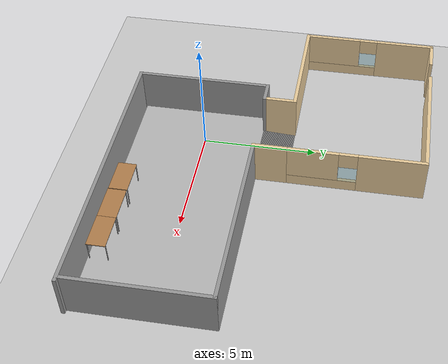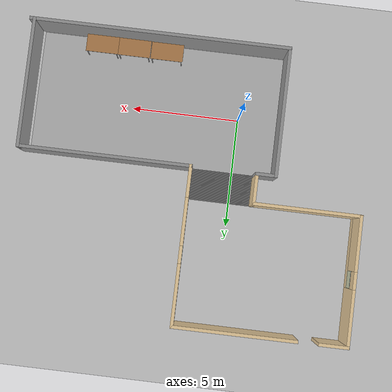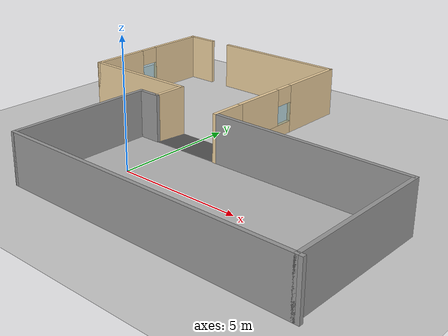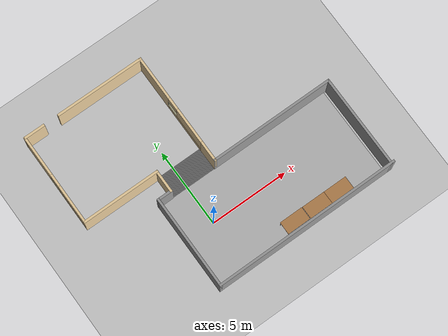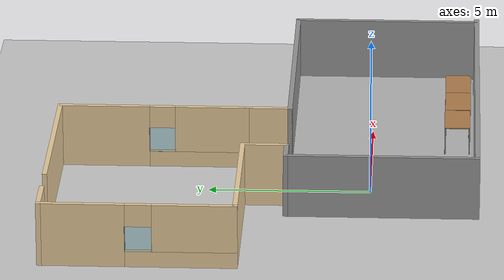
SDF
<sdf version="1.7">
 <world name="default">
  <plugin name="xbot2_clock" filename="libxbot2_gz_clock.so"/>
  <gravity>0 0 -9.81</gravity>
  <model name="ground_plane">
   <static>1</static>
   <link name="link">
    <collision name="collision">
     <geometry><plane><normal>0 0 1</normal><size>100 100</size></plane></geometry>
     <surface><friction><ode><mu>1</mu><mu2>1</mu2></ode></friction></surface>
    </collision>
    <visual name="visual">
     <cast_shadows>0</cast_shadows>
     <geometry><plane><normal>0 0 1</normal><size>100 100</size></plane></geometry>
     <material>
      <script><uri>file://media/materials/scripts/gazebo.material</uri><name>Gazebo/Grey</name></script>
     </material>
    </visual>
   </link>
  </model>
  <light name="sun" type="directional">
   <pose>0 0 10 0 -0 0</pose>
   <diffuse>0.8 0.8 0.8 1</diffuse>
   <specular>0.2 0.2 0.2 1</specular>
   <attenuation>
    <range>1000</range>
    <constant>0.9</constant>
    <linear>0.01</linear>
    <quadratic>0.001</quadratic>
   </attenuation>
   <direction>-0.5 0.1 -0.9</direction>
   <spot><inner_angle>0</inner_angle><outer_angle>0</outer_angle><falloff>0</falloff></spot>
  </light>
  <physics name="update_rate" type="ode">
   <real_time_update_rate>4000</real_time_update_rate>
   <max_step_size>0.00025</max_step_size>
   <max_contacts>5</max_contacts>
   <bullet>
    <solver><iters>100</iters><sor>1.55</sor><type>sequential_impulse</type></solver>
    <constraints>
     <contact_surface_layer>0.2</contact_surface_layer>
     <cfm>0.005</cfm>
     <erp>0.2</erp>
     <split_impulse>1</split_impulse>
     <split_impulse_penetration_threshold>-0.01</split_impulse_penetration_threshold>
    </constraints>
   </bullet>
   <ode>
    <solver>
     <iters>50</iters>
     <sor>1.2</sor>
     <type>quick</type>
     <use_dynamic_moi_rescaling>0</use_dynamic_moi_rescaling>
    </solver>
    <constraints>
     <contact_surface_layer>0.0002</contact_surface_layer>
     <contact_max_correcting_vel>500</contact_max_correcting_vel>
     <cfm>1e-06</cfm>
     <erp>0.3</erp>
    </constraints>
   </ode>
   <real_time_factor>1</real_time_factor>
  </physics>
  <magnetic_field>6e-06 2.3e-05 -4.2e-05</magnetic_field>
  <atmosphere type="adiabatic"/>
  <scene><ambient>0.4 0.4 0.4 1</ambient><background>0.7 0.7 0.7 1</background><shadows>1</shadows></scene>
  <spherical_coordinates>
   <surface_model>EARTH_WGS84</surface_model>
   <latitude_deg>0</latitude_deg>
   <longitude_deg>0</longitude_deg>
   <elevation>0</elevation>
   <heading_deg>0</heading_deg>
  </spherical_coordinates>
  <model name="room3人">
   <pose>3.5576 3.23391 0 0 -0 0</pose>
   <link name="Stairs_2">
    <visual name="Stairs_2_Visual_0">
     <pose>-3.08906 0.718158 0.001 0 -0 0</pose>
     <geometry><box><size>2.88 0.029 0.002</size></box></geometry>
     <material>
      <script><uri>file://media/materials/scripts/gazebo.material</uri><name>Gazebo/Grey</name></script>
      <ambient>1 1 1 1</ambient>
     </material>
     <meta><layer>0</layer></meta>
    </visual>
    <collision name="Stairs_2_Collision_0">
     <geometry><box><size>2.88 0.029 0.002</size></box></geometry>
     <pose>-3.08906 0.718158 0.001 0 -0 0</pose>
    </collision>
    <visual name="Stairs_2_Visual_1">
     <pose>-3.08906 0.689157 0.003 0 -0 0</pose>
     <geometry><box><size>2.88 0.029 0.002</size></box></geometry>
     <material>
      <script><uri>file://media/materials/scripts/gazebo.material</uri><name>Gazebo/Grey</name></script>
      <ambient>1 1 1 1</ambient>
     </material>
     <meta><layer>0</layer></meta>
    </visual>
    <collision name="Stairs_2_Collision_1">
     <geometry><box><size>2.88 0.029 0.002</size></box></geometry>
     <pose>-3.08906 0.689157 0.003 0 -0 0</pose>
    </collision>
    <visual name="Stairs_2_Visual_2">
     <pose>-3.08906 0.660158 0.005 0 -0 0</pose>
     <geometry><box><size>2.88 0.029 0.002</size></box></geometry>
     <material>
      <script><uri>file://media/materials/scripts/gazebo.material</uri><name>Gazebo/Grey</name></script>
      <ambient>1 1 1 1</ambient>
     </material>
     <meta><layer>0</layer></meta>
    </visual>
    <collision name="Stairs_2_Collision_2">
     <geometry><box><size>2.88 0.029 0.002</size></box></geometry>
     <pose>-3.08906 0.660158 0.005 0 -0 0</pose>
    </collision>
    <visual name="Stairs_2_Visual_3">
     <pose>-3.08906 0.631158 0.007 0 -0 0</pose>
     <geometry><box><size>2.88 0.029 0.002</size></box></geometry>
     <material>
      <script><uri>file://media/materials/scripts/gazebo.material</uri><name>Gazebo/Grey</name></script>
      <ambient>1 1 1 1</ambient>
     </material>
     <meta><layer>0</layer></meta>
    </visual>
    <collision name="Stairs_2_Collision_3">
     <geometry><box><size>2.88 0.029 0.002</size></box></geometry>
     <pose>-3.08906 0.631158 0.007 0 -0 0</pose>
    </collision>
    <visual name="Stairs_2_Visual_4">
     <pose>-3.08906 0.602157 0.009 0 -0 0</pose>
     <geometry><box><size>2.88 0.029 0.002</size></box></geometry>
     <material>
      <script><uri>file://media/materials/scripts/gazebo.material</uri><name>Gazebo/Grey</name></script>
      <ambient>1 1 1 1</ambient>
     </material>
     <meta><layer>0</layer></meta>
    </visual>
    <collision name="Stairs_2_Collision_4">
     <geometry><box><size>2.88 0.029 0.002</size></box></geometry>
     <pose>-3.08906 0.602157 0.009 0 -0 0</pose>
    </collision>
    <visual name="Stairs_2_Visual_5">
     <pose>-3.08906 0.573158 0.011 0 -0 0</pose>
     <geometry><box><size>2.88 0.029 0.002</size></box></geometry>
     <material>
      <script><uri>file://media/materials/scripts/gazebo.material</uri><name>Gazebo/Grey</name></script>
      <ambient>1 1 1 1</ambient>
     </material>
     <meta><layer>0</layer></meta>
    </visual>
    <collision name="Stairs_2_Collision_5">
     <geometry><box><size>2.88 0.029 0.002</size></box></geometry>
     <pose>-3.08906 0.573158 0.011 0 -0 0</pose>
    </collision>
    <visual name="Stairs_2_Visual_6">
     <pose>-3.08906 0.544158 0.013 0 -0 0</pose>
     <geometry><box><size>2.88 0.029 0.002</size></box></geometry>
     <material>
      <script><uri>file://media/materials/scripts/gazebo.material</uri><name>Gazebo/Grey</name></script>
      <ambient>1 1 1 1</ambient>
     </material>
     <meta><layer>0</layer></meta>
    </visual>
    <collision name="Stairs_2_Collision_6">
     <geometry><box><size>2.88 0.029 0.002</size></box></geometry>
     <pose>-3.08906 0.544158 0.013 0 -0 0</pose>
    </collision>
    <visual name="Stairs_2_Visual_7">
     <pose>-3.08906 0.515157 0.015 0 -0 0</pose>
     <geometry><box><size>2.88 0.029 0.002</size></box></geometry>
     <material>
      <script><uri>file://media/materials/scripts/gazebo.material</uri><name>Gazebo/Grey</name></script>
      <ambient>1 1 1 1</ambient>
     </material>
     <meta><layer>0</layer></meta>
    </visual>
    <collision name="Stairs_2_Collision_7">
     <geometry><box><size>2.88 0.029 0.002</size></box></geometry>
     <pose>-3.08906 0.515157 0.015 0 -0 0</pose>
    </collision>
    <visual name="Stairs_2_Visual_8">
     <pose>-3.08906 0.486158 0.017 0 -0 0</pose>
     <geometry><box><size>2.88 0.029 0.002</size></box></geometry>
     <material>
      <script><uri>file://media/materials/scripts/gazebo.material</uri><name>Gazebo/Grey</name></script>
      <ambient>1 1 1 1</ambient>
     </material>
     <meta><layer>0</layer></meta>
    </visual>
    <collision name="Stairs_2_Collision_8">
     <geometry><box><size>2.88 0.029 0.002</size></box></geometry>
     <pose>-3.08906 0.486158 0.017 0 -0 0</pose>
    </collision>
    <visual name="Stairs_2_Visual_9">
     <pose>-3.08906 0.457157 0.019 0 -0 0</pose>
     <geometry><box><size>2.88 0.029 0.002</size></box></geometry>
     <material>
      <script><uri>file://media/materials/scripts/gazebo.material</uri><name>Gazebo/Grey</name></script>
      <ambient>1 1 1 1</ambient>
     </material>
     <meta><layer>0</layer></meta>
    </visual>
    <collision name="Stairs_2_Collision_9">
     <geometry><box><size>2.88 0.029 0.002</size></box></geometry>
     <pose>-3.08906 0.457157 0.019 0 -0 0</pose>
    </collision>
    <visual name="Stairs_2_Visual_10">
     <pose>-3.08906 0.428158 0.021 0 -0 0</pose>
     <geometry><box><size>2.88 0.029 0.002</size></box></geometry>
     <material>
      <script><uri>file://media/materials/scripts/gazebo.material</uri><name>Gazebo/Grey</name></script>
      <ambient>1 1 1 1</ambient>
     </material>
     <meta><layer>0</layer></meta>
    </visual>
    <collision name="Stairs_2_Collision_10">
     <geometry><box><size>2.88 0.029 0.002</size></box></geometry>
     <pose>-3.08906 0.428158 0.021 0 -0 0</pose>
    </collision>
    <visual name="Stairs_2_Visual_11">
     <pose>-3.08906 0.399158 0.023 0 -0 0</pose>
     <geometry><box><size>2.88 0.029 0.002</size></box></geometry>
     <material>
      <script><uri>file://media/materials/scripts/gazebo.material</uri><name>Gazebo/Grey</name></script>
      <ambient>1 1 1 1</ambient>
     </material>
     <meta><layer>0</layer></meta>
    </visual>
    <collision name="Stairs_2_Collision_11">
     <geometry><box><size>2.88 0.029 0.002</size></box></geometry>
     <pose>-3.08906 0.399158 0.023 0 -0 0</pose>
    </collision>
    <visual name="Stairs_2_Visual_12">
     <pose>-3.08906 0.370157 0.025 0 -0 0</pose>
     <geometry><box><size>2.88 0.029 0.002</size></box></geometry>
     <material>
      <script><uri>file://media/materials/scripts/gazebo.material</uri><name>Gazebo/Grey</name></script>
      <ambient>1 1 1 1</ambient>
     </material>
     <meta><layer>0</layer></meta>
    </visual>
    <collision name="Stairs_2_Collision_12">
     <geometry><box><size>2.88 0.029 0.002</size></box></geometry>
     <pose>-3.08906 0.370157 0.025 0 -0 0</pose>
    </collision>
    <visual name="Stairs_2_Visual_13">
     <pose>-3.08906 0.341158 0.027 0 -0 0</pose>
     <geometry><box><size>2.88 0.029 0.002</size></box></geometry>
     <material>
      <script><uri>file://media/materials/scripts/gazebo.material</uri><name>Gazebo/Grey</name></script>
      <ambient>1 1 1 1</ambient>
     </material>
     <meta><layer>0</layer></meta>
    </visual>
    <collision name="Stairs_2_Collision_13">
     <geometry><box><size>2.88 0.029 0.002</size></box></geometry>
     <pose>-3.08906 0.341158 0.027 0 -0 0</pose>
    </collision>
    <visual name="Stairs_2_Visual_14">
     <pose>-3.08906 0.312158 0.029 0 -0 0</pose>
     <geometry><box><size>2.88 0.029 0.002</size></box></geometry>
     <material>
      <script><uri>file://media/materials/scripts/gazebo.material</uri><name>Gazebo/Grey</name></script>
      <ambient>1 1 1 1</ambient>
     </material>
     <meta><layer>0</layer></meta>
    </visual>
    <collision name="Stairs_2_Collision_14">
     <geometry><box><size>2.88 0.029 0.002</size></box></geometry>
     <pose>-3.08906 0.312158 0.029 0 -0 0</pose>
    </collision>
    <visual name="Stairs_2_Visual_15">
     <pose>-3.08906 0.283157 0.031 0 -0 0</pose>
     <geometry><box><size>2.88 0.029 0.002</size></box></geometry>
     <material>
      <script><uri>file://media/materials/scripts/gazebo.material</uri><name>Gazebo/Grey</name></script>
      <ambient>1 1 1 1</ambient>
     </material>
     <meta><layer>0</layer></meta>
    </visual>
    <collision name="Stairs_2_Collision_15">
     <geometry><box><size>2.88 0.029 0.002</size></box></geometry>
     <pose>-3.08906 0.283157 0.031 0 -0 0</pose>
    </collision>
    <visual name="Stairs_2_Visual_16">
     <pose>-3.08906 0.254158 0.033 0 -0 0</pose>
     <geometry><box><size>2.88 0.029 0.002</size></box></geometry>
     <material>
      <script><uri>file://media/materials/scripts/gazebo.material</uri><name>Gazebo/Grey</name></script>
      <ambient>1 1 1 1</ambient>
     </material>
     <meta><layer>0</layer></meta>
    </visual>
    <collision name="Stairs_2_Collision_16">
     <geometry><box><size>2.88 0.029 0.002</size></box></geometry>
     <pose>-3.08906 0.254158 0.033 0 -0 0</pose>
    </collision>
    <visual name="Stairs_2_Visual_17">
     <pose>-3.08906 0.225157 0.035 0 -0 0</pose>
     <geometry><box><size>2.88 0.029 0.002</size></box></geometry>
     <material>
      <script><uri>file://media/materials/scripts/gazebo.material</uri><name>Gazebo/Grey</name></script>
      <ambient>1 1 1 1</ambient>
     </material>
     <meta><layer>0</layer></meta>
    </visual>
    <collision name="Stairs_2_Collision_17">
     <geometry><box><size>2.88 0.029 0.002</size></box></geometry>
     <pose>-3.08906 0.225157 0.035 0 -0 0</pose>
    </collision>
    <visual name="Stairs_2_Visual_18">
     <pose>-3.08906 0.196158 0.037 0 -0 0</pose>
     <geometry><box><size>2.88 0.029 0.002</size></box></geometry>
     <material>
      <script><uri>file://media/materials/scripts/gazebo.material</uri><name>Gazebo/Grey</name></script>
      <ambient>1 1 1 1</ambient>
     </material>
     <meta><layer>0</layer></meta>
    </visual>
    <collision name="Stairs_2_Collision_18">
     <geometry><box><size>2.88 0.029 0.002</size></box></geometry>
     <pose>-3.08906 0.196158 0.037 0 -0 0</pose>
    </collision>
    <visual name="Stairs_2_Visual_19">
     <pose>-3.08906 0.167158 0.039 0 -0 0</pose>
     <geometry><box><size>2.88 0.029 0.002</size></box></geometry>
     <material>
      <script><uri>file://media/materials/scripts/gazebo.material</uri><name>Gazebo/Grey</name></script>
      <ambient>1 1 1 1</ambient>
     </material>
     <meta><layer>0</layer></meta>
    </visual>
    <collision name="Stairs_2_Collision_19">
     <geometry><box><size>2.88 0.029 0.002</size></box></geometry>
     <pose>-3.08906 0.167158 0.039 0 -0 0</pose>
    </collision>
    <visual name="Stairs_2_Visual_20">
     <pose>-3.08906 0.138157 0.041 0 -0 0</pose>
     <geometry><box><size>2.88 0.029 0.002</size></box></geometry>
     <material>
      <script><uri>file://media/materials/scripts/gazebo.material</uri><name>Gazebo/Grey</name></script>
      <ambient>1 1 1 1</ambient>
     </material>
     <meta><layer>0</layer></meta>
    </visual>
    <collision name="Stairs_2_Collision_20">
     <geometry><box><size>2.88 0.029 0.002</size></box></geometry>
     <pose>-3.08906 0.138157 0.041 0 -0 0</pose>
    </collision>
    <visual name="Stairs_2_Visual_21">
     <pose>-3.08906 0.109158 0.043 0 -0 0</pose>
     <geometry><box><size>2.88 0.029 0.002</size></box></geometry>
     <material>
      <script><uri>file://media/materials/scripts/gazebo.material</uri><name>Gazebo/Grey</name></script>
      <ambient>1 1 1 1</ambient>
     </material>
     <meta><layer>0</layer></meta>
    </visual>
    <collision name="Stairs_2_Collision_21">
     <geometry><box><size>2.88 0.029 0.002</size></box></geometry>
     <pose>-3.08906 0.109158 0.043 0 -0 0</pose>
    </collision>
    <visual name="Stairs_2_Visual_22">
     <pose>-3.08906 0.080158 0.045 0 -0 0</pose>
     <geometry><box><size>2.88 0.029 0.002</size></box></geometry>
     <material>
      <script><uri>file://media/materials/scripts/gazebo.material</uri><name>Gazebo/Grey</name></script>
      <ambient>1 1 1 1</ambient>
     </material>
     <meta><layer>0</layer></meta>
    </visual>
    <collision name="Stairs_2_Collision_22">
     <geometry><box><size>2.88 0.029 0.002</size></box></geometry>
     <pose>-3.08906 0.080158 0.045 0 -0 0</pose>
    </collision>
    <visual name="Stairs_2_Visual_23">
     <pose>-3.08906 0.051158 0.047 0 -0 0</pose>
     <geometry><box><size>2.88 0.029 0.002</size></box></geometry>
     <material>
      <script><uri>file://media/materials/scripts/gazebo.material</uri><name>Gazebo/Grey</name></script>
      <ambient>1 1 1 1</ambient>
     </material>
     <meta><layer>0</layer></meta>
    </visual>
    <collision name="Stairs_2_Collision_23">
     <geometry><box><size>2.88 0.029 0.002</size></box></geometry>
     <pose>-3.08906 0.051158 0.047 0 -0 0</pose>
    </collision>
    <visual name="Stairs_2_Visual_24">
     <pose>-3.08906 0.022157 0.049 0 -0 0</pose>
     <geometry><box><size>2.88 0.029 0.002</size></box></geometry>
     <material>
      <script><uri>file://media/materials/scripts/gazebo.material</uri><name>Gazebo/Grey</name></script>
      <ambient>1 1 1 1</ambient>
     </material>
     <meta><layer>0</layer></meta>
    </visual>
    <collision name="Stairs_2_Collision_24">
     <geometry><box><size>2.88 0.029 0.002</size></box></geometry>
     <pose>-3.08906 0.022157 0.049 0 -0 0</pose>
    </collision>
    <visual name="Stairs_2_Visual_25">
     <pose>-3.08906 -0.006842 0.051 0 -0 0</pose>
     <geometry><box><size>2.88 0.029 0.002</size></box></geometry>
     <material>
      <script><uri>file://media/materials/scripts/gazebo.material</uri><name>Gazebo/Grey</name></script>
      <ambient>1 1 1 1</ambient>
     </material>
     <meta><layer>0</layer></meta>
    </visual>
    <collision name="Stairs_2_Collision_25">
     <geometry><box><size>2.88 0.029 0.002</size></box></geometry>
     <pose>-3.08906 -0.006842 0.051 0 -0 0</pose>
    </collision>
    <visual name="Stairs_2_Visual_26">
     <pose>-3.08906 -0.035843 0.053 0 -0 0</pose>
     <geometry><box><size>2.88 0.029 0.002</size></box></geometry>
     <material>
      <script><uri>file://media/materials/scripts/gazebo.material</uri><name>Gazebo/Grey</name></script>
      <ambient>1 1 1 1</ambient>
     </material>
     <meta><layer>0</layer></meta>
    </visual>
    <collision name="Stairs_2_Collision_26">
     <geometry><box><size>2.88 0.029 0.002</size></box></geometry>
     <pose>-3.08906 -0.035843 0.053 0 -0 0</pose>
    </collision>
    <visual name="Stairs_2_Visual_27">
     <pose>-3.08906 -0.064843 0.055 0 -0 0</pose>
     <geometry><box><size>2.88 0.029 0.002</size></box></geometry>
     <material>
      <script><uri>file://media/materials/scripts/gazebo.material</uri><name>Gazebo/Grey</name></script>
      <ambient>1 1 1 1</ambient>
     </material>
     <meta><layer>0</layer></meta>
    </visual>
    <collision name="Stairs_2_Collision_27">
     <geometry><box><size>2.88 0.029 0.002</size></box></geometry>
     <pose>-3.08906 -0.064843 0.055 0 -0 0</pose>
    </collision>
    <visual name="Stairs_2_Visual_28">
     <pose>-3.08906 -0.093843 0.057 0 -0 0</pose>
     <geometry><box><size>2.88 0.029 0.002</size></box></geometry>
     <material>
      <script><uri>file://media/materials/scripts/gazebo.material</uri><name>Gazebo/Grey</name></script>
      <ambient>1 1 1 1</ambient>
     </material>
     <meta><layer>0</layer></meta>
    </visual>
    <collision name="Stairs_2_Collision_28">
     <geometry><box><size>2.88 0.029 0.002</size></box></geometry>
     <pose>-3.08906 -0.093843 0.057 0 -0 0</pose>
    </collision>
    <visual name="Stairs_2_Visual_29">
     <pose>-3.08906 -0.122843 0.059 0 -0 0</pose>
     <geometry><box><size>2.88 0.029 0.002</size></box></geometry>
     <material>
      <script><uri>file://media/materials/scripts/gazebo.material</uri><name>Gazebo/Grey</name></script>
      <ambient>1 1 1 1</ambient>
     </material>
     <meta><layer>0</layer></meta>
    </visual>
    <collision name="Stairs_2_Collision_29">
     <geometry><box><size>2.88 0.029 0.002</size></box></geometry>
     <pose>-3.08906 -0.122843 0.059 0 -0 0</pose>
    </collision>
    <visual name="Stairs_2_Visual_30">
     <pose>-3.08906 -0.151843 0.061 0 -0 0</pose>
     <geometry><box><size>2.88 0.029 0.002</size></box></geometry>
     <material>
      <script><uri>file://media/materials/scripts/gazebo.material</uri><name>Gazebo/Grey</name></script>
      <ambient>1 1 1 1</ambient>
     </material>
     <meta><layer>0</layer></meta>
    </visual>
    <collision name="Stairs_2_Collision_30">
     <geometry><box><size>2.88 0.029 0.002</size></box></geometry>
     <pose>-3.08906 -0.151843 0.061 0 -0 0</pose>
    </collision>
    <visual name="Stairs_2_Visual_31">
     <pose>-3.08906 -0.180843 0.063 0 -0 0</pose>
     <geometry><box><size>2.88 0.029 0.002</size></box></geometry>
     <material>
      <script><uri>file://media/materials/scripts/gazebo.material</uri><name>Gazebo/Grey</name></script>
      <ambient>1 1 1 1</ambient>
     </material>
     <meta><layer>0</layer></meta>
    </visual>
    <collision name="Stairs_2_Collision_31">
     <geometry><box><size>2.88 0.029 0.002</size></box></geometry>
     <pose>-3.08906 -0.180843 0.063 0 -0 0</pose>
    </collision>
    <visual name="Stairs_2_Visual_32">
     <pose>-3.08906 -0.209843 0.065 0 -0 0</pose>
     <geometry><box><size>2.88 0.029 0.002</size></box></geometry>
     <material>
      <script><uri>file://media/materials/scripts/gazebo.material</uri><name>Gazebo/Grey</name></script>
      <ambient>1 1 1 1</ambient>
     </material>
     <meta><layer>0</layer></meta>
    </visual>
    <collision name="Stairs_2_Collision_32">
     <geometry><box><size>2.88 0.029 0.002</size></box></geometry>
     <pose>-3.08906 -0.209843 0.065 0 -0 0</pose>
    </collision>
    <visual name="Stairs_2_Visual_33">
     <pose>-3.08906 -0.238843 0.067 0 -0 0</pose>
     <geometry><box><size>2.88 0.029 0.002</size></box></geometry>
     <material>
      <script><uri>file://media/materials/scripts/gazebo.material</uri><name>Gazebo/Grey</name></script>
      <ambient>1 1 1 1</ambient>
     </material>
     <meta><layer>0</layer></meta>
    </visual>
    <collision name="Stairs_2_Collision_33">
     <geometry><box><size>2.88 0.029 0.002</size></box></geometry>
     <pose>-3.08906 -0.238843 0.067 0 -0 0</pose>
    </collision>
    <visual name="Stairs_2_Visual_34">
     <pose>-3.08906 -0.267843 0.069 0 -0 0</pose>
     <geometry><box><size>2.88 0.029 0.002</size></box></geometry>
     <material>
      <script><uri>file://media/materials/scripts/gazebo.material</uri><name>Gazebo/Grey</name></script>
      <ambient>1 1 1 1</ambient>
     </material>
     <meta><layer>0</layer></meta>
    </visual>
    <collision name="Stairs_2_Collision_34">
     <geometry><box><size>2.88 0.029 0.002</size></box></geometry>
     <pose>-3.08906 -0.267843 0.069 0 -0 0</pose>
    </collision>
    <visual name="Stairs_2_Visual_35">
     <pose>-3.08906 -0.296843 0.071 0 -0 0</pose>
     <geometry><box><size>2.88 0.029 0.002</size></box></geometry>
     <material>
      <script><uri>file://media/materials/scripts/gazebo.material</uri><name>Gazebo/Grey</name></script>
      <ambient>1 1 1 1</ambient>
     </material>
     <meta><layer>0</layer></meta>
    </visual>
    <collision name="Stairs_2_Collision_35">
     <geometry><box><size>2.88 0.029 0.002</size></box></geometry>
     <pose>-3.08906 -0.296843 0.071 0 -0 0</pose>
    </collision>
    <visual name="Stairs_2_Visual_36">
     <pose>-3.08906 -0.325843 0.073 0 -0 0</pose>
     <geometry><box><size>2.88 0.029 0.002</size></box></geometry>
     <material>
      <script><uri>file://media/materials/scripts/gazebo.material</uri><name>Gazebo/Grey</name></script>
      <ambient>1 1 1 1</ambient>
     </material>
     <meta><layer>0</layer></meta>
    </visual>
    <collision name="Stairs_2_Collision_36">
     <geometry><box><size>2.88 0.029 0.002</size></box></geometry>
     <pose>-3.08906 -0.325843 0.073 0 -0 0</pose>
    </collision>
    <visual name="Stairs_2_Visual_37">
     <pose>-3.08906 -0.354843 0.075 0 -0 0</pose>
     <geometry><box><size>2.88 0.029 0.002</size></box></geometry>
     <material>
      <script><uri>file://media/materials/scripts/gazebo.material</uri><name>Gazebo/Grey</name></script>
      <ambient>1 1 1 1</ambient>
     </material>
     <meta><layer>0</layer></meta>
    </visual>
    <collision name="Stairs_2_Collision_37">
     <geometry><box><size>2.88 0.029 0.002</size></box></geometry>
     <pose>-3.08906 -0.354843 0.075 0 -0 0</pose>
    </collision>
    <visual name="Stairs_2_Visual_38">
     <pose>-3.08906 -0.383843 0.077 0 -0 0</pose>
     <geometry><box><size>2.88 0.029 0.002</size></box></geometry>
     <material>
      <script><uri>file://media/materials/scripts/gazebo.material</uri><name>Gazebo/Grey</name></script>
      <ambient>1 1 1 1</ambient>
     </material>
     <meta><layer>0</layer></meta>
    </visual>
    <collision name="Stairs_2_Collision_38">
     <geometry><box><size>2.88 0.029 0.002</size></box></geometry>
     <pose>-3.08906 -0.383843 0.077 0 -0 0</pose>
    </collision>
    <visual name="Stairs_2_Visual_39">
     <pose>-3.08906 -0.412843 0.079 0 -0 0</pose>
     <geometry><box><size>2.88 0.029 0.002</size></box></geometry>
     <material>
      <script><uri>file://media/materials/scripts/gazebo.material</uri><name>Gazebo/Grey</name></script>
      <ambient>1 1 1 1</ambient>
     </material>
     <meta><layer>0</layer></meta>
    </visual>
    <collision name="Stairs_2_Collision_39">
     <geometry><box><size>2.88 0.029 0.002</size></box></geometry>
     <pose>-3.08906 -0.412843 0.079 0 -0 0</pose>
    </collision>
    <visual name="Stairs_2_Visual_40">
     <pose>-3.08906 -0.441843 0.081 0 -0 0</pose>
     <geometry><box><size>2.88 0.029 0.002</size></box></geometry>
     <material>
      <script><uri>file://media/materials/scripts/gazebo.material</uri><name>Gazebo/Grey</name></script>
      <ambient>1 1 1 1</ambient>
     </material>
     <meta><layer>0</layer></meta>
    </visual>
    <collision name="Stairs_2_Collision_40">
     <geometry><box><size>2.88 0.029 0.002</size></box></geometry>
     <pose>-3.08906 -0.441843 0.081 0 -0 0</pose>
    </collision>
    <visual name="Stairs_2_Visual_41">
     <pose>-3.08906 -0.470843 0.083 0 -0 0</pose>
     <geometry><box><size>2.88 0.029 0.002</size></box></geometry>
     <material>
      <script><uri>file://media/materials/scripts/gazebo.material</uri><name>Gazebo/Grey</name></script>
      <ambient>1 1 1 1</ambient>
     </material>
     <meta><layer>0</layer></meta>
    </visual>
    <collision name="Stairs_2_Collision_41">
     <geometry><box><size>2.88 0.029 0.002</size></box></geometry>
     <pose>-3.08906 -0.470843 0.083 0 -0 0</pose>
    </collision>
    <visual name="Stairs_2_Visual_42">
     <pose>-3.08906 -0.499842 0.085 0 -0 0</pose>
     <geometry><box><size>2.88 0.029 0.002</size></box></geometry>
     <material>
      <script><uri>file://media/materials/scripts/gazebo.material</uri><name>Gazebo/Grey</name></script>
      <ambient>1 1 1 1</ambient>
     </material>
     <meta><layer>0</layer></meta>
    </visual>
    <collision name="Stairs_2_Collision_42">
     <geometry><box><size>2.88 0.029 0.002</size></box></geometry>
     <pose>-3.08906 -0.499842 0.085 0 -0 0</pose>
    </collision>
    <visual name="Stairs_2_Visual_43">
     <pose>-3.08906 -0.528843 0.087 0 -0 0</pose>
     <geometry><box><size>2.88 0.029 0.002</size></box></geometry>
     <material>
      <script><uri>file://media/materials/scripts/gazebo.material</uri><name>Gazebo/Grey</name></script>
      <ambient>1 1 1 1</ambient>
     </material>
     <meta><layer>0</layer></meta>
    </visual>
    <collision name="Stairs_2_Collision_43">
     <geometry><box><size>2.88 0.029 0.002</size></box></geometry>
     <pose>-3.08906 -0.528843 0.087 0 -0 0</pose>
    </collision>
    <visual name="Stairs_2_Visual_44">
     <pose>-3.08906 -0.557843 0.089 0 -0 0</pose>
     <geometry><box><size>2.88 0.029 0.002</size></box></geometry>
     <material>
      <script><uri>file://media/materials/scripts/gazebo.material</uri><name>Gazebo/Grey</name></script>
      <ambient>1 1 1 1</ambient>
     </material>
     <meta><layer>0</layer></meta>
    </visual>
    <collision name="Stairs_2_Collision_44">
     <geometry><box><size>2.88 0.029 0.002</size></box></geometry>
     <pose>-3.08906 -0.557843 0.089 0 -0 0</pose>
    </collision>
    <visual name="Stairs_2_Visual_45">
     <pose>-3.08906 -0.586843 0.091 0 -0 0</pose>
     <geometry><box><size>2.88 0.029 0.002</size></box></geometry>
     <material>
      <script><uri>file://media/materials/scripts/gazebo.material</uri><name>Gazebo/Grey</name></script>
      <ambient>1 1 1 1</ambient>
     </material>
     <meta><layer>0</layer></meta>
    </visual>
    <collision name="Stairs_2_Collision_45">
     <geometry><box><size>2.88 0.029 0.002</size></box></geometry>
     <pose>-3.08906 -0.586843 0.091 0 -0 0</pose>
    </collision>
    <visual name="Stairs_2_Visual_46">
     <pose>-3.08906 -0.615843 0.093 0 -0 0</pose>
     <geometry><box><size>2.88 0.029 0.002</size></box></geometry>
     <material>
      <script><uri>file://media/materials/scripts/gazebo.material</uri><name>Gazebo/Grey</name></script>
      <ambient>1 1 1 1</ambient>
     </material>
     <meta><layer>0</layer></meta>
    </visual>
    <collision name="Stairs_2_Collision_46">
     <geometry><box><size>2.88 0.029 0.002</size></box></geometry>
     <pose>-3.08906 -0.615843 0.093 0 -0 0</pose>
    </collision>
    <visual name="Stairs_2_Visual_47">
     <pose>-3.08906 -0.644843 0.095 0 -0 0</pose>
     <geometry><box><size>2.88 0.029 0.002</size></box></geometry>
     <material>
      <script><uri>file://media/materials/scripts/gazebo.material</uri><name>Gazebo/Grey</name></script>
      <ambient>1 1 1 1</ambient>
     </material>
     <meta><layer>0</layer></meta>
    </visual>
    <collision name="Stairs_2_Collision_47">
     <geometry><box><size>2.88 0.029 0.002</size></box></geometry>
     <pose>-3.08906 -0.644843 0.095 0 -0 0</pose>
    </collision>
    <visual name="Stairs_2_Visual_48">
     <pose>-3.08906 -0.673843 0.097 0 -0 0</pose>
     <geometry><box><size>2.88 0.029 0.002</size></box></geometry>
     <material>
      <script><uri>file://media/materials/scripts/gazebo.material</uri><name>Gazebo/Grey</name></script>
      <ambient>1 1 1 1</ambient>
     </material>
     <meta><layer>0</layer></meta>
    </visual>
    <collision name="Stairs_2_Collision_48">
     <geometry><box><size>2.88 0.029 0.002</size></box></geometry>
     <pose>-3.08906 -0.673843 0.097 0 -0 0</pose>
    </collision>
    <visual name="Stairs_2_Visual_49">
     <pose>-3.08906 -0.702843 0.099 0 -0 0</pose>
     <geometry><box><size>2.88 0.029 0.002</size></box></geometry>
     <material>
      <script><uri>file://media/materials/scripts/gazebo.material</uri><name>Gazebo/Grey</name></script>
      <ambient>1 1 1 1</ambient>
     </material>
     <meta><layer>0</layer></meta>
    </visual>
    <collision name="Stairs_2_Collision_49">
     <geometry><box><size>2.88 0.029 0.002</size></box></geometry>
     <pose>-3.08906 -0.702843 0.099 0 -0 0</pose>
    </collision>
   </link>
   <link name="Wall_1">
    <pose>-5.5395 6.525 0 0 -0 0</pose>
    <visual name="Wall_1_Visual_0">
     <pose>-3.30735 0 1 0 -0 0</pose>
     <geometry><box><size>1.3853 0.15 2</size></box></geometry>
     <material>
      <script><uri>file://media/materials/scripts/gazebo.material</uri><name>Gazebo/Grey</name></script>
      <ambient>0.921569 0.807843 0.615686 1</ambient>
     </material>
     <meta><layer>0</layer></meta>
    </visual>
    <collision name="Wall_1_Collision_0">
     <geometry><box><size>1.3853 0.15 2</size></box></geometry>
     <pose>-3.30735 0 1 0 -0 0</pose>
    </collision>
    <visual name="Wall_1_Visual_1">
     <pose>1.14265 0 1 0 -0 0</pose>
     <geometry><box><size>5.7147 0.15 2</size></box></geometry>
     <material>
      <script><uri>file://media/materials/scripts/gazebo.material</uri><name>Gazebo/Grey</name></script>
      <ambient>0.921569 0.807843 0.615686 1</ambient>
     </material>
     <meta><layer>0</layer></meta>
    </visual>
    <collision name="Wall_1_Collision_1">
     <geometry><box><size>5.7147 0.15 2</size></box></geometry>
     <pose>1.14265 0 1 0 -0 0</pose>
    </collision>
   </link>
   <link name="Wall_11">
    <collision name="Wall_11_Collision">
     <geometry><box><size>1.5 0.15 2</size></box></geometry>
     <pose>0 0 1 0 -0 0</pose>
    </collision>
    <visual name="Wall_11_Visual">
     <pose>0 0 1 0 -0 0</pose>
     <geometry><box><size>1.5 0.15 2</size></box></geometry>
     <material>
      <script><uri>file://media/materials/scripts/gazebo.material</uri><name>Gazebo/Grey</name></script>
      <ambient>0.921569 0.807843 0.615686 1</ambient>
     </material>
     <meta><layer>0</layer></meta>
    </visual>
    <pose>-4.6145 -0 0 0 -0 -1.5708</pose>
   </link>
   <link name="Wall_13">
    <collision name="Wall_13_Collision">
     <geometry><box><size>1.5 0.15 2</size></box></geometry>
     <pose>0 0 1 0 -0 0</pose>
    </collision>
    <visual name="Wall_13_Visual">
     <pose>0 0 1 0 -0 0</pose>
     <geometry><box><size>1.5 0.15 2</size></box></geometry>
     <material>
      <script><uri>file://media/materials/scripts/gazebo.material</uri><name>Gazebo/Grey</name></script>
      <ambient>0.921569 0.807843 0.615686 1</ambient>
     </material>
     <meta><layer>0</layer></meta>
    </visual>
    <pose>-1.6145 -0 0 0 -0 -1.5708</pose>
   </link>
   <link name="Wall_15">
    <collision name="Wall_15_Collision">
     <geometry><box><size>1 0.15 2</size></box></geometry>
     <pose>0 0 1 0 -0 0</pose>
    </collision>
    <visual name="Wall_15_Visual">
     <pose>0 0 1 0 -0 0</pose>
     <geometry><box><size>1 0.15 2</size></box></geometry>
     <material>
      <script><uri>file://media/materials/scripts/gazebo.material</uri><name>Gazebo/Grey</name></script>
      <ambient>0.533333 0.541176 0.521569 1</ambient>
     </material>
     <meta><layer>0</layer></meta>
    </visual>
    <pose>-5.0395 -0.675 0 0 -0 3.14159</pose>
   </link>
   <link name="Wall_17">
    <collision name="Wall_17_Collision">
     <geometry><box><size>6 0.15 2</size></box></geometry>
     <pose>0 0 1 0 -0 0</pose>
    </collision>
    <visual name="Wall_17_Visual">
     <pose>0 0 1 0 -0 0</pose>
     <geometry><box><size>6 0.15 2</size></box></geometry>
     <material>
      <script><uri>file://media/materials/scripts/gazebo.material</uri><name>Gazebo/Grey</name></script>
      <ambient>0.533333 0.541176 0.521569 1</ambient>
     </material>
     <meta><layer>0</layer></meta>
    </visual>
    <pose>-5.4645 -3.6 0 0 -0 -1.5708</pose>
   </link>
   <link name="Wall_19">
    <collision name="Wall_19_Collision">
     <geometry><box><size>8 0.15 2</size></box></geometry>
     <pose>0 0 1 0 -0 0</pose>
    </collision>
    <visual name="Wall_19_Visual">
     <pose>0 0 1 0 -0 0</pose>
     <geometry><box><size>8 0.15 2</size></box></geometry>
     <material>
      <script><uri>file://media/materials/scripts/gazebo.material</uri><name>Gazebo/Grey</name></script>
      <ambient>0.533333 0.541176 0.521569 1</ambient>
     </material>
     <meta><layer>0</layer></meta>
    </visual>
    <pose>2.3105 -0.675 0 0 -0 0</pose>
   </link>
   <link name="Wall_21">
    <collision name="Wall_21_Collision">
     <geometry><box><size>12 0.15 2</size></box></geometry>
     <pose>0 0 1 0 -0 0</pose>
    </collision>
    <visual name="Wall_21_Visual">
     <pose>0 0 1 0 -0 0</pose>
     <geometry><box><size>12 0.15 2</size></box></geometry>
     <material>
      <script><uri>file://media/materials/scripts/gazebo.material</uri><name>Gazebo/Grey</name></script>
      <ambient>0.533333 0.541176 0.521569 1</ambient>
     </material>
     <meta><layer>0</layer></meta>
    </visual>
    <pose>0.4605 -6.525 0 0 -0 0</pose>
   </link>
   <link name="Wall_24">
    <collision name="Wall_24_Collision">
     <geometry><box><size>6 0.15 2</size></box></geometry>
     <pose>0 0 1 0 -0 0</pose>
    </collision>
    <visual name="Wall_24_Visual">
     <pose>0 0 1 0 -0 0</pose>
     <geometry><box><size>6 0.15 2</size></box></geometry>
     <material>
      <script><uri>file://media/materials/scripts/gazebo.material</uri><name>Gazebo/Grey</name></script>
      <ambient>0.533333 0.541176 0.521569 1</ambient>
     </material>
     <meta><layer>0</layer></meta>
    </visual>
    <pose>6.2355 -3.6 0 0 -0 -1.5708</pose>
   </link>
   <link name="Wall_5">
    <pose>-9.4645 3.6 0 0 -0 -1.5708</pose>
    <visual name="Wall_5_Visual_0">
     <pose>-1.67939 0 1 0 -0 0</pose>
     <geometry><box><size>2.64122 0.15 2</size></box></geometry>
     <material>
      <script><uri>file://media/materials/scripts/gazebo.material</uri><name>Gazebo/Grey</name></script>
      <ambient>0.921569 0.807843 0.615686 1</ambient>
     </material>
     <meta><layer>0</layer></meta>
    </visual>
    <collision name="Wall_5_Collision_0">
     <geometry><box><size>2.64122 0.15 2</size></box></geometry>
     <pose>-1.67939 0 1 0 -0 0</pose>
    </collision>
    <visual name="Wall_5_Visual_1">
     <pose>1.32061 0 0.25 0 -0 0</pose>
     <geometry><box><size>3.35878 0.15 0.5</size></box></geometry>
     <material>
      <script><uri>file://media/materials/scripts/gazebo.material</uri><name>Gazebo/Grey</name></script>
      <ambient>0.921569 0.807843 0.615686 1</ambient>
     </material>
     <meta><layer>0</layer></meta>
    </visual>
    <collision name="Wall_5_Collision_1">
     <geometry><box><size>3.35878 0.15 0.5</size></box></geometry>
     <pose>1.32061 0 0.25 0 -0 0</pose>
    </collision>
    <visual name="Wall_5_Visual_2">
     <pose>1.72061 0 1.25 0 -0 0</pose>
     <geometry><box><size>2.55878 0.15 1.5</size></box></geometry>
     <material>
      <script><uri>file://media/materials/scripts/gazebo.material</uri><name>Gazebo/Grey</name></script>
      <ambient>0.921569 0.807843 0.615686 1</ambient>
     </material>
     <meta><layer>0</layer></meta>
    </visual>
    <collision name="Wall_5_Collision_2">
     <geometry><box><size>2.55878 0.15 1.5</size></box></geometry>
     <pose>1.72061 0 1.25 0 -0 0</pose>
    </collision>
    <visual name="Wall_5_Visual_3">
     <pose>0.041216 0 1.65 0 -0 0</pose>
     <geometry><box><size>0.8 0.15 0.7</size></box></geometry>
     <material>
      <script><uri>file://media/materials/scripts/gazebo.material</uri><name>Gazebo/Grey</name></script>
      <ambient>0.921569 0.807843 0.615686 1</ambient>
     </material>
     <meta><layer>0</layer></meta>
    </visual>
    <collision name="Wall_5_Collision_3">
     <geometry><box><size>0.8 0.15 0.7</size></box></geometry>
     <pose>0.041216 0 1.65 0 -0 0</pose>
    </collision>
   </link>
   <link name="Wall_7">
    <pose>-1.6145 3.6 0 0 -0 -1.5708</pose>
    <visual name="Wall_7_Visual_0">
     <pose>-1.55969 0 1 0 -0 0</pose>
     <geometry><box><size>2.88062 0.15 2</size></box></geometry>
     <material>
      <script><uri>file://media/materials/scripts/gazebo.material</uri><name>Gazebo/Grey</name></script>
      <ambient>0.921569 0.807843 0.615686 1</ambient>
     </material>
     <meta><layer>0</layer></meta>
    </visual>
    <collision name="Wall_7_Collision_0">
     <geometry><box><size>2.88062 0.15 2</size></box></geometry>
     <pose>-1.55969 0 1 0 -0 0</pose>
    </collision>
    <visual name="Wall_7_Visual_1">
     <pose>1.44031 0 0.25 0 -0 0</pose>
     <geometry><box><size>3.11938 0.15 0.5</size></box></geometry>
     <material>
      <script><uri>file://media/materials/scripts/gazebo.material</uri><name>Gazebo/Grey</name></script>
      <ambient>0.921569 0.807843 0.615686 1</ambient>
     </material>
     <meta><layer>0</layer></meta>
    </visual>
    <collision name="Wall_7_Collision_1">
     <geometry><box><size>3.11938 0.15 0.5</size></box></geometry>
     <pose>1.44031 0 0.25 0 -0 0</pose>
    </collision>
    <visual name="Wall_7_Visual_2">
     <pose>1.84031 0 1.25 0 -0 0</pose>
     <geometry><box><size>2.31938 0.15 1.5</size></box></geometry>
     <material>
      <script><uri>file://media/materials/scripts/gazebo.material</uri><name>Gazebo/Grey</name></script>
      <ambient>0.921569 0.807843 0.615686 1</ambient>
     </material>
     <meta><layer>0</layer></meta>
    </visual>
    <collision name="Wall_7_Collision_2">
     <geometry><box><size>2.31938 0.15 1.5</size></box></geometry>
     <pose>1.84031 0 1.25 0 -0 0</pose>
    </collision>
    <visual name="Wall_7_Visual_3">
     <pose>0.280618 0 1.65 0 -0 0</pose>
     <geometry><box><size>0.8 0.15 0.7</size></box></geometry>
     <material>
      <script><uri>file://media/materials/scripts/gazebo.material</uri><name>Gazebo/Grey</name></script>
      <ambient>0.921569 0.807843 0.615686 1</ambient>
     </material>
     <meta><layer>0</layer></meta>
    </visual>
    <collision name="Wall_7_Collision_3">
     <geometry><box><size>0.8 0.15 0.7</size></box></geometry>
     <pose>0.280618 0 1.65 0 -0 0</pose>
    </collision>
   </link>
   <link name="Wall_9">
    <collision name="Wall_9_Collision">
     <geometry><box><size>5 0.15 2</size></box></geometry>
     <pose>0 0 1 0 -0 0</pose>
    </collision>
    <visual name="Wall_9_Visual">
     <pose>0 0 1 0 -0 0</pose>
     <geometry><box><size>5 0.15 2</size></box></geometry>
     <material>
      <script><uri>file://media/materials/scripts/gazebo.material</uri><name>Gazebo/Grey</name></script>
      <ambient>0.921569 0.807843 0.615686 1</ambient>
     </material>
     <meta><layer>0</layer></meta>
    </visual>
    <pose>-7.0395 0.675 0 0 -0 0</pose>
   </link>
   <static>1</static>
  </model>
  <model name="Workshop_floor">
   <link name="Wall_19">
    <pose>2.15902 -0.687124 0 0 -0 0</pose>
    <velocity_decay><linear>0</linear><angular>0</angular></velocity_decay>
    <inertial>
     <inertia><ixx>0</ixx><ixy>0</ixy><ixz>0</ixz><iyy>0</iyy><iyz>0</iyz><izz>0</izz></inertia>
     <mass>0</mass>
    </inertial>
    <visual name="Wall_19_Visual">
     <pose>0 0 0.0065 0 -0 0</pose>
     <geometry><box><size>11.4457 5.68101 0.178843</size></box></geometry>
     <material>
      <script>
       <uri>model://Workshop/materials/scripts</uri>
       <uri>model://Workshop/materials/textures</uri>
       <name>rubber</name>
      </script>
      <shader type="pixel"/>
     </material>
    </visual>
    <collision name="Wall_19_Collision">
     <pose>0 0 0.0065 0 -0 0</pose>
     <geometry><box><size>11.4457 5.68101 0.178843</size></box></geometry>
     <surface>
      <friction>
       <ode><mu>1</mu><mu2>1</mu2><fdir1>0 0 0</fdir1><slip1>0</slip1><slip2>0</slip2></ode>
       <torsional>
        <coefficient>1</coefficient>
        <patch_radius>0</patch_radius>
        <surface_radius>0</surface_radius>
        <use_patch_radius>1</use_patch_radius>
        <ode><slip>0</slip></ode>
       </torsional>
      </friction>
      <bounce><restitution_coefficient>0</restitution_coefficient><threshold>1e+06</threshold></bounce>
      <contact>
       <collide_without_contact>0</collide_without_contact>
       <collide_without_contact_bitmask>1</collide_without_contact_bitmask>
       <collide_bitmask>1</collide_bitmask>
       <ode>
        <soft_cfm>0</soft_cfm>
        <soft_erp>0.2</soft_erp>
        <kp>1e+13</kp>
        <kd>1</kd>
        <max_vel>0.01</max_vel>
        <min_depth>0</min_depth>
       </ode>
       <bullet>
        <split_impulse>1</split_impulse>
        <split_impulse_penetration_threshold>-0.01</split_impulse_penetration_threshold>
        <soft_cfm>0</soft_cfm>
        <soft_erp>0.2</soft_erp>
        <kp>1e+13</kp>
        <kd>1</kd>
       </bullet>
      </contact>
     </surface>
    </collision>
   </link>
   <static>1</static>
   <pose>1.70403 0.360409 0 0 -0 0</pose>
  </model>
  <model name="window">
   <link name="link_2">
    <visual name="visual">
     <pose>0 0 0.9 0 -0 0</pose>
     <geometry><box><size>0.8 0.15 0.8</size></box></geometry>
     <material>
      <lighting>1</lighting>
      <ambient>0.1 0.5 0.6 1</ambient>
      <diffuse>0.1 0.5 0.6 1</diffuse>
      <specular>0.01 0.01 0.01 1</specular>
      <emissive>0 0 0 1</emissive>
     </material>
     <transparency>0.7</transparency>
    </visual>
    <collision name="collision">
     <pose>0 0 0.9 0 -0 0</pose>
     <geometry><box><size>0.8 0.15 0.8</size></box></geometry>
    </collision>
   </link>
   <static>1</static>
   <pose>-5.90839 6.80719 0 0 -0 1.5678</pose>
  </model>
  <model name="window_clone">
   <link name="link_2">
    <visual name="visual">
     <pose>0 0 0.9 0 -0 0</pose>
     <geometry><box><size>0.8 0.15 0.8</size></box></geometry>
     <material>
      <lighting>1</lighting>
      <ambient>0.1 0.5 0.6 1</ambient>
      <diffuse>0.1 0.5 0.6 1</diffuse>
      <specular>0.01 0.01 0.01 1</specular>
      <emissive>0 0 0 1</emissive>
     </material>
     <transparency>0.7</transparency>
    </visual>
    <collision name="collision">
     <pose>0 0 0.9 0 -0 0</pose>
     <geometry><box><size>0.8 0.15 0.8</size></box></geometry>
    </collision>
   </link>
   <static>1</static>
   <pose>1.93726 6.56521 0 0 -0 1.5678</pose>
  </model>
  <model name="table">
   <static>1</static>
   <link name="link">
    <collision name="surface">
     <pose>0 0 1 0 -0 0</pose>
     <geometry><box><size>1.5 0.8 0.03</size></box></geometry>
     <surface><friction><ode><mu>0.6</mu><mu2>0.6</mu2></ode></friction></surface>
    </collision>
    <visual name="visual1">
     <pose>0 0 1 0 -0 0</pose>
     <geometry><box><size>1.5 0.8 0.03</size></box></geometry>
     <material>
      <script><uri>file://media/materials/scripts/gazebo.material</uri><name>Gazebo/Wood</name></script>
     </material>
    </visual>
    <collision name="front_left_leg">
     <pose>0.68 0.38 0.5 0 -0 0</pose>
     <geometry><cylinder><radius>0.02</radius><length>1</length></cylinder></geometry>
    </collision>
    <visual name="front_left_leg">
     <pose>0.68 0.38 0.5 0 -0 0</pose>
     <geometry><cylinder><radius>0.02</radius><length>1</length></cylinder></geometry>
     <material>
      <script><uri>file://media/materials/scripts/gazebo.material</uri><name>Gazebo/Grey</name></script>
     </material>
    </visual>
    <collision name="front_right_leg">
     <pose>0.68 -0.38 0.5 0 -0 0</pose>
     <geometry><cylinder><radius>0.02</radius><length>1</length></cylinder></geometry>
    </collision>
    <visual name="front_right_leg">
     <pose>0.68 -0.38 0.5 0 -0 0</pose>
     <geometry><cylinder><radius>0.02</radius><length>1</length></cylinder></geometry>
     <material>
      <script><uri>file://media/materials/scripts/gazebo.material</uri><name>Gazebo/Grey</name></script>
     </material>
    </visual>
    <collision name="back_right_leg">
     <pose>-0.68 -0.38 0.5 0 -0 0</pose>
     <geometry><cylinder><radius>0.02</radius><length>1</length></cylinder></geometry>
    </collision>
    <visual name="back_right_leg">
     <pose>-0.68 -0.38 0.5 0 -0 0</pose>
     <geometry><cylinder><radius>0.02</radius><length>1</length></cylinder></geometry>
     <material>
      <script><uri>file://media/materials/scripts/gazebo.material</uri><name>Gazebo/Grey</name></script>
     </material>
    </visual>
    <collision name="back_left_leg">
     <pose>-0.68 0.38 0.5 0 -0 0</pose>
     <geometry><cylinder><radius>0.02</radius><length>1</length></cylinder></geometry>
    </collision>
    <visual name="back_left_leg">
     <pose>-0.68 0.38 0.5 0 -0 0</pose>
     <geometry><cylinder><radius>0.02</radius><length>1</length></cylinder></geometry>
     <material>
      <script><uri>file://media/materials/scripts/gazebo.material</uri><name>Gazebo/Grey</name></script>
     </material>
    </visual>
   </link>
   <pose>3.66698 -2.6832 0 0 -0 0</pose>
  </model>
  <model name="table_clone">
   <static>1</static>
   <link name="link">
    <collision name="surface">
     <pose>0 0 1 0 -0 0</pose>
     <geometry><box><size>1.5 0.8 0.03</size></box></geometry>
     <surface><friction><ode><mu>0.6</mu><mu2>0.6</mu2></ode></friction></surface>
    </collision>
    <visual name="visual1">
     <pose>0 0 1 0 -0 0</pose>
     <geometry><box><size>1.5 0.8 0.03</size></box></geometry>
     <material>
      <script><uri>file://media/materials/scripts/gazebo.material</uri><name>Gazebo/Wood</name></script>
     </material>
    </visual>
    <collision name="front_left_leg">
     <pose>0.68 0.38 0.5 0 -0 0</pose>
     <geometry><cylinder><radius>0.02</radius><length>1</length></cylinder></geometry>
    </collision>
    <visual name="front_left_leg">
     <pose>0.68 0.38 0.5 0 -0 0</pose>
     <geometry><cylinder><radius>0.02</radius><length>1</length></cylinder></geometry>
     <material>
      <script><uri>file://media/materials/scripts/gazebo.material</uri><name>Gazebo/Grey</name></script>
     </material>
    </visual>
    <collision name="front_right_leg">
     <pose>0.68 -0.38 0.5 0 -0 0</pose>
     <geometry><cylinder><radius>0.02</radius><length>1</length></cylinder></geometry>
    </collision>
    <visual name="front_right_leg">
     <pose>0.68 -0.38 0.5 0 -0 0</pose>
     <geometry><cylinder><radius>0.02</radius><length>1</length></cylinder></geometry>
     <material>
      <script><uri>file://media/materials/scripts/gazebo.material</uri><name>Gazebo/Grey</name></script>
     </material>
    </visual>
    <collision name="back_right_leg">
     <pose>-0.68 -0.38 0.5 0 -0 0</pose>
     <geometry><cylinder><radius>0.02</radius><length>1</length></cylinder></geometry>
    </collision>
    <visual name="back_right_leg">
     <pose>-0.68 -0.38 0.5 0 -0 0</pose>
     <geometry><cylinder><radius>0.02</radius><length>1</length></cylinder></geometry>
     <material>
      <script><uri>file://media/materials/scripts/gazebo.material</uri><name>Gazebo/Grey</name></script>
     </material>
    </visual>
    <collision name="back_left_leg">
     <pose>-0.68 0.38 0.5 0 -0 0</pose>
     <geometry><cylinder><radius>0.02</radius><length>1</length></cylinder></geometry>
    </collision>
    <visual name="back_left_leg">
     <pose>-0.68 0.38 0.5 0 -0 0</pose>
     <geometry><cylinder><radius>0.02</radius><length>1</length></cylinder></geometry>
     <material>
      <script><uri>file://media/materials/scripts/gazebo.material</uri><name>Gazebo/Grey</name></script>
     </material>
    </visual>
   </link>
   <pose>5.19611 -2.69696 0 0 -0 0</pose>
  </model>
  <model name="table_clone_0">
   <static>1</static>
   <link name="link">
    <collision name="surface">
     <pose>0 0 1 0 -0 0</pose>
     <geometry><box><size>1.5 0.8 0.03</size></box></geometry>
     <surface><friction><ode><mu>0.6</mu><mu2>0.6</mu2></ode></friction></surface>
    </collision>
    <visual name="visual1">
     <pose>0 0 1 0 -0 0</pose>
     <geometry><box><size>1.5 0.8 0.03</size></box></geometry>
     <material>
      <script><uri>file://media/materials/scripts/gazebo.material</uri><name>Gazebo/Wood</name></script>
     </material>
    </visual>
    <collision name="front_left_leg">
     <pose>0.68 0.38 0.5 0 -0 0</pose>
     <geometry><cylinder><radius>0.02</radius><length>1</length></cylinder></geometry>
    </collision>
    <visual name="front_left_leg">
     <pose>0.68 0.38 0.5 0 -0 0</pose>
     <geometry><cylinder><radius>0.02</radius><length>1</length></cylinder></geometry>
     <material>
      <script><uri>file://media/materials/scripts/gazebo.material</uri><name>Gazebo/Grey</name></script>
     </material>
    </visual>
    <collision name="front_right_leg">
     <pose>0.68 -0.38 0.5 0 -0 0</pose>
     <geometry><cylinder><radius>0.02</radius><length>1</length></cylinder></geometry>
    </collision>
    <visual name="front_right_leg">
     <pose>0.68 -0.38 0.5 0 -0 0</pose>
     <geometry><cylinder><radius>0.02</radius><length>1</length></cylinder></geometry>
     <material>
      <script><uri>file://media/materials/scripts/gazebo.material</uri><name>Gazebo/Grey</name></script>
     </material>
    </visual>
    <collision name="back_right_leg">
     <pose>-0.68 -0.38 0.5 0 -0 0</pose>
     <geometry><cylinder><radius>0.02</radius><length>1</length></cylinder></geometry>
    </collision>
    <visual name="back_right_leg">
     <pose>-0.68 -0.38 0.5 0 -0 0</pose>
     <geometry><cylinder><radius>0.02</radius><length>1</length></cylinder></geometry>
     <material>
      <script><uri>file://media/materials/scripts/gazebo.material</uri><name>Gazebo/Grey</name></script>
     </material>
    </visual>
    <collision name="back_left_leg">
     <pose>-0.68 0.38 0.5 0 -0 0</pose>
     <geometry><cylinder><radius>0.02</radius><length>1</length></cylinder></geometry>
    </collision>
    <visual name="back_left_leg">
     <pose>-0.68 0.38 0.5 0 -0 0</pose>
     <geometry><cylinder><radius>0.02</radius><length>1</length></cylinder></geometry>
     <material>
      <script><uri>file://media/materials/scripts/gazebo.material</uri><name>Gazebo/Grey</name></script>
     </material>
    </visual>
   </link>
   <pose>6.69453 -2.70083 0 0 -0 0</pose>
  </model>
  <light name="user_point_light_0" type="point">
   <pose>2.02125 -0.14088 1 0 -0 0</pose>
   <diffuse>0.5 0.5 0.5 1</diffuse>
   <specular>0.1 0.1 0.1 1</specular>
   <attenuation>
    <range>20</range>
    <constant>0.5</constant>
    <linear>0.01</linear>
    <quadratic>0.001</quadratic>
   </attenuation>
   <cast_shadows>0</cast_shadows>
   <direction>0 0 -1</direction>
  </light>
 </world>
</sdf>
